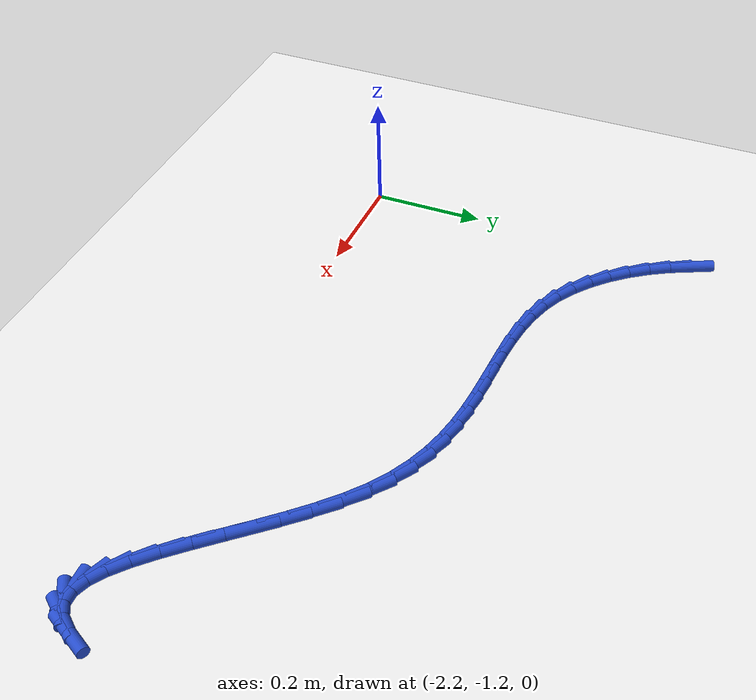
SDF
<sdf version="1.6">
 <world name="default">
  <model name="ground_plane">
   <static>1</static>
   <link name="link">
    <collision name="collision">
     <geometry><plane><normal>0 0 1</normal><size>100 100</size></plane></geometry>
     <surface><friction><ode><mu>100</mu><mu2>50</mu2></ode></friction></surface>
    </collision>
    <visual name="visual">
     <cast_shadows>0</cast_shadows>
     <geometry><plane><normal>0 0 1</normal><size>100 100</size></plane></geometry>
     <material>
      <script><uri>file://media/materials/scripts/gazebo.material</uri><name>Gazebo/WhiteGlow</name></script>
     </material>
    </visual>
   </link>
  </model>
  <model name="line">
   <link name="link_130">
    <pose>-2.198731474647877 -0.5958715231276223 0.01 0 1.57 -1.1341824459438654</pose>
    <collision name="collision">
     <geometry><cylinder><radius>0.01</radius><length>0.08</length></cylinder></geometry>
    </collision>
    <visual name="visual">
     <material>
      <script><name>Gazebo/Blue</name><uri>file://media/materials/scripts/gazebo.material</uri></script>
     </material>
     <geometry><cylinder><radius>0.01</radius><length>0.08</length></cylinder></geometry>
    </visual>
   </link>
   <link name="link_131">
    <pose>-2.1824698595963263 -0.6307190486161458 0.01 0 1.57 -1.0483207488748323</pose>
    <collision name="collision">
     <geometry><cylinder><radius>0.01</radius><length>0.08</length></cylinder></geometry>
    </collision>
    <visual name="visual">
     <material>
      <script><name>Gazebo/Blue</name><uri>file://media/materials/scripts/gazebo.material</uri></script>
     </material>
     <geometry><cylinder><radius>0.01</radius><length>0.08</length></cylinder></geometry>
    </visual>
   </link>
   <link name="link_132">
    <pose>-2.1632224410019 -0.6641431987549715 0.01 0 1.57 -0.9613625442135021</pose>
    <collision name="collision">
     <geometry><cylinder><radius>0.01</radius><length>0.08</length></cylinder></geometry>
    </collision>
    <visual name="visual">
     <material>
      <script><name>Gazebo/Blue</name><uri>file://media/materials/scripts/gazebo.material</uri></script>
     </material>
     <geometry><cylinder><radius>0.01</radius><length>0.08</length></cylinder></geometry>
    </visual>
   </link>
   <link name="link_133">
    <pose>-2.1412140549735867 -0.6956703874792862 0.01 0 1.57 -0.8710729217029075</pose>
    <collision name="collision">
     <geometry><cylinder><radius>0.01</radius><length>0.08</length></cylinder></geometry>
    </collision>
    <visual name="visual">
     <material>
      <script><name>Gazebo/Blue</name><uri>file://media/materials/scripts/gazebo.material</uri></script>
     </material>
     <geometry><cylinder><radius>0.01</radius><length>0.08</length></cylinder></geometry>
    </visual>
   </link>
   <link name="link_134">
    <pose>-2.116669537620373 -0.7248270287242748 0.01 0 1.57 -0.7751799365251962</pose>
    <collision name="collision">
     <geometry><cylinder><radius>0.01</radius><length>0.08</length></cylinder></geometry>
    </collision>
    <visual name="visual">
     <material>
      <script><name>Gazebo/Blue</name><uri>file://media/materials/scripts/gazebo.material</uri></script>
     </material>
     <geometry><cylinder><radius>0.01</radius><length>0.08</length></cylinder></geometry>
    </visual>
   </link>
   <link name="link_135">
    <pose>-2.0898137250512465 -0.7511395364251229 0.01 0 1.57 -0.6713815204581652</pose>
    <collision name="collision">
     <geometry><cylinder><radius>0.01</radius><length>0.08</length></cylinder></geometry>
    </collision>
    <visual name="visual">
     <material>
      <script><name>Gazebo/Blue</name><uri>file://media/materials/scripts/gazebo.material</uri></script>
     </material>
     <geometry><cylinder><radius>0.01</radius><length>0.08</length></cylinder></geometry>
    </visual>
   </link>
   <link name="link_136">
    <pose>-2.0608714533751975 -0.7741343245170154 0.01 0 1.57 -0.5574557455081393</pose>
    <collision name="collision">
     <geometry><cylinder><radius>0.01</radius><length>0.08</length></cylinder></geometry>
    </collision>
    <visual name="visual">
     <material>
      <script><name>Gazebo/Blue</name><uri>file://media/materials/scripts/gazebo.material</uri></script>
     </material>
     <geometry><cylinder><radius>0.01</radius><length>0.08</length></cylinder></geometry>
    </visual>
   </link>
   <link name="link_137">
    <pose>-2.030067558701211 -0.7933378069351376 0.01 0 1.57 -0.43206512940823466</pose>
    <collision name="collision">
     <geometry><cylinder><radius>0.01</radius><length>0.08</length></cylinder></geometry>
    </collision>
    <visual name="visual">
     <material>
      <script><name>Gazebo/Blue</name><uri>file://media/materials/scripts/gazebo.material</uri></script>
     </material>
     <geometry><cylinder><radius>0.01</radius><length>0.08</length></cylinder></geometry>
    </visual>
   </link>
   <link name="link_138">
    <pose>-1.9976281390189556 -0.8082963659332197 0.01 0 1.57 -0.3098471521096765</pose>
    <collision name="collision">
     <geometry><cylinder><radius>0.01</radius><length>0.08</length></cylinder></geometry>
    </collision>
    <visual name="visual">
     <material>
      <script><name>Gazebo/Blue</name><uri>file://media/materials/scripts/gazebo.material</uri></script>
     </material>
     <geometry><cylinder><radius>0.01</radius><length>0.08</length></cylinder></geometry>
    </visual>
   </link>
   <link name="link_139">
    <pose>-1.9638150318965155 -0.81912193587967 0.01 0 1.57 -0.21002216598823686</pose>
    <collision name="collision">
     <geometry><cylinder><radius>0.01</radius><length>0.08</length></cylinder></geometry>
    </collision>
    <visual name="visual">
     <material>
      <script><name>Gazebo/Blue</name><uri>file://media/materials/scripts/gazebo.material</uri></script>
     </material>
     <geometry><cylinder><radius>0.01</radius><length>0.08</length></cylinder></geometry>
    </visual>
   </link>
   <link name="link_140">
    <pose>-1.928929999330796 -0.8265582253871631 0.01 0 1.57 -0.13448658965517532</pose>
    <collision name="collision">
     <geometry><cylinder><radius>0.01</radius><length>0.08</length></cylinder></geometry>
    </collision>
    <visual name="visual">
     <material>
      <script><name>Gazebo/Blue</name><uri>file://media/materials/scripts/gazebo.material</uri></script>
     </material>
     <geometry><cylinder><radius>0.01</radius><length>0.08</length></cylinder></geometry>
    </visual>
   </link>
   <link name="link_141">
    <pose>-1.8932769053877432 -0.8313822067397708 0.01 0 1.57 -0.08256023352288526</pose>
    <collision name="collision">
     <geometry><cylinder><radius>0.01</radius><length>0.08</length></cylinder></geometry>
    </collision>
    <visual name="visual">
     <material>
      <script><name>Gazebo/Blue</name><uri>file://media/materials/scripts/gazebo.material</uri></script>
     </material>
     <geometry><cylinder><radius>0.01</radius><length>0.08</length></cylinder></geometry>
    </visual>
   </link>
   <link name="link_142">
    <pose>-1.857159614133303 -0.8343708522215646 0.01 0 1.57 -0.053158479001413884</pose>
    <collision name="collision">
     <geometry><cylinder><radius>0.01</radius><length>0.08</length></cylinder></geometry>
    </collision>
    <visual name="visual">
     <material>
      <script><name>Gazebo/Blue</name><uri>file://media/materials/scripts/gazebo.material</uri></script>
     </material>
     <geometry><cylinder><radius>0.01</radius><length>0.08</length></cylinder></geometry>
    </visual>
   </link>
   <link name="link_143">
    <pose>-1.8208819896334214 -0.8363011341166158 0.01 0 1.57 -0.04560090876845848</pose>
    <collision name="collision">
     <geometry><cylinder><radius>0.01</radius><length>0.08</length></cylinder></geometry>
    </collision>
    <visual name="visual">
     <material>
      <script><name>Gazebo/Blue</name><uri>file://media/materials/scripts/gazebo.material</uri></script>
     </material>
     <geometry><cylinder><radius>0.01</radius><length>0.08</length></cylinder></geometry>
    </visual>
   </link>
   <link name="link_144">
    <pose>-1.7847478959540466 -0.8379500247089954 0.01 0 1.57 -0.05970701881820016</pose>
    <collision name="collision">
     <geometry><cylinder><radius>0.01</radius><length>0.08</length></cylinder></geometry>
    </collision>
    <visual name="visual">
     <material>
      <script><name>Gazebo/Blue</name><uri>file://media/materials/scripts/gazebo.material</uri></script>
     </material>
     <geometry><cylinder><radius>0.01</radius><length>0.08</length></cylinder></geometry>
    </visual>
   </link>
   <link name="link_145">
    <pose>-1.7490443413570749 -0.8400843143144819 0.01 0 1.57 -0.09259395101061291</pose>
    <collision name="collision">
     <geometry><cylinder><radius>0.01</radius><length>0.08</length></cylinder></geometry>
    </collision>
    <visual name="visual">
     <material>
      <script><name>Gazebo/Blue</name><uri>file://media/materials/scripts/gazebo.material</uri></script>
     </material>
     <geometry><cylinder><radius>0.01</radius><length>0.08</length></cylinder></geometry>
    </visual>
   </link>
   <link name="link_146">
    <pose>-1.7138607564029986 -0.8433514438612322 0.01 0 1.57 -0.14224864553624136</pose>
    <collision name="collision">
     <geometry><cylinder><radius>0.01</radius><length>0.08</length></cylinder></geometry>
    </collision>
    <visual name="visual">
     <material>
      <script><name>Gazebo/Blue</name><uri>file://media/materials/scripts/gazebo.material</uri></script>
     </material>
     <geometry><cylinder><radius>0.01</radius><length>0.08</length></cylinder></geometry>
    </visual>
   </link>
   <link name="link_147">
    <pose>-1.6791583243772952 -0.8483213848381499 0.01 0 1.57 -0.20828708573421248</pose>
    <collision name="collision">
     <geometry><cylinder><radius>0.01</radius><length>0.08</length></cylinder></geometry>
    </collision>
    <visual name="visual">
     <material>
      <script><name>Gazebo/Blue</name><uri>file://media/materials/scripts/gazebo.material</uri></script>
     </material>
     <geometry><cylinder><radius>0.01</radius><length>0.08</length></cylinder></geometry>
    </visual>
   </link>
   <link name="link_148">
    <pose>-1.6448960558934145 -0.85556279630326 0.01 0 1.57 -0.2893588736398982</pose>
    <collision name="collision">
     <geometry><cylinder><radius>0.01</radius><length>0.08</length></cylinder></geometry>
    </collision>
    <visual name="visual">
     <material>
      <script><name>Gazebo/Blue</name><uri>file://media/materials/scripts/gazebo.material</uri></script>
     </material>
     <geometry><cylinder><radius>0.01</radius><length>0.08</length></cylinder></geometry>
    </visual>
   </link>
   <link name="link_149">
    <pose>-1.6110329615648071 -0.865644337314588 0.01 0 1.57 -0.3827779265731072</pose>
    <collision name="collision">
     <geometry><cylinder><radius>0.01</radius><length>0.08</length></cylinder></geometry>
    </collision>
    <visual name="visual">
     <material>
      <script><name>Gazebo/Blue</name><uri>file://media/materials/scripts/gazebo.material</uri></script>
     </material>
     <geometry><cylinder><radius>0.01</radius><length>0.08</length></cylinder></geometry>
    </visual>
   </link>
   <link name="link_150">
    <pose>-1.5775280520049213 -0.8791346669301581 0.01 0 1.57 -0.48449112565479047</pose>
    <collision name="collision">
     <geometry><cylinder><radius>0.01</radius><length>0.08</length></cylinder></geometry>
    </collision>
    <visual name="visual">
     <material>
      <script><name>Gazebo/Blue</name><uri>file://media/materials/scripts/gazebo.material</uri></script>
     </material>
     <geometry><cylinder><radius>0.01</radius><length>0.08</length></cylinder></geometry>
    </visual>
   </link>
   <link name="link_151">
    <pose>-1.5443403378272078 -0.8966024442079964 0.01 0 1.57 -0.5895340685820873</pose>
    <collision name="collision">
     <geometry><cylinder><radius>0.01</radius><length>0.08</length></cylinder></geometry>
    </collision>
    <visual name="visual">
     <material>
      <script><name>Gazebo/Blue</name><uri>file://media/materials/scripts/gazebo.material</uri></script>
     </material>
     <geometry><cylinder><radius>0.01</radius><length>0.08</length></cylinder></geometry>
    </visual>
   </link>
   <link name="link_152">
    <pose>-1.511428829645113 -0.9186163282061279 0.01 0 1.57 -0.6901585364938444</pose>
    <collision name="collision">
     <geometry><cylinder><radius>0.01</radius><length>0.08</length></cylinder></geometry>
    </collision>
    <visual name="visual">
     <material>
      <script><name>Gazebo/Blue</name><uri>file://media/materials/scripts/gazebo.material</uri></script>
     </material>
     <geometry><cylinder><radius>0.01</radius><length>0.08</length></cylinder></geometry>
    </visual>
   </link>
   <link name="link_153">
    <pose>-1.4787681848894698 -0.9455810436707625 0.01 0 1.57 -0.7664221974112636</pose>
    <collision name="collision">
     <geometry><cylinder><radius>0.01</radius><length>0.08</length></cylinder></geometry>
    </collision>
    <visual name="visual">
     <material>
      <script><name>Gazebo/Blue</name><uri>file://media/materials/scripts/gazebo.material</uri></script>
     </material>
     <geometry><cylinder><radius>0.01</radius><length>0.08</length></cylinder></geometry>
    </visual>
   </link>
   <link name="link_154">
    <pose>-1.4464479752175985 -0.9766973398570713 0.01 0 1.57 -0.8172096946961277</pose>
    <collision name="collision">
     <geometry><cylinder><radius>0.01</radius><length>0.08</length></cylinder></geometry>
    </collision>
    <visual name="visual">
     <material>
      <script><name>Gazebo/Blue</name><uri>file://media/materials/scripts/gazebo.material</uri></script>
     </material>
     <geometry><cylinder><radius>0.01</radius><length>0.08</length></cylinder></geometry>
    </visual>
   </link>
   <link name="link_155">
    <pose>-1.4146089946433793 -1.0106293008590126 0.01 0 1.57 -0.8482415148907783</pose>
    <collision name="collision">
     <geometry><cylinder><radius>0.01</radius><length>0.08</length></cylinder></geometry>
    </collision>
    <visual name="visual">
     <material>
      <script><name>Gazebo/Blue</name><uri>file://media/materials/scripts/gazebo.material</uri></script>
     </material>
     <geometry><cylinder><radius>0.01</radius><length>0.08</length></cylinder></geometry>
    </visual>
   </link>
   <link name="link_156">
    <pose>-1.3833922728020693 -1.0460385421261 0.01 0 1.57 -0.86243603906075</pose>
    <collision name="collision">
     <geometry><cylinder><radius>0.01</radius><length>0.08</length></cylinder></geometry>
    </collision>
    <visual name="visual">
     <material>
      <script><name>Gazebo/Blue</name><uri>file://media/materials/scripts/gazebo.material</uri></script>
     </material>
     <geometry><cylinder><radius>0.01</radius><length>0.08</length></cylinder></geometry>
    </visual>
   </link>
   <link name="link_157">
    <pose>-1.3529388393289294 -1.0815866791078461 0.01 0 1.57 -0.8603700661896171</pose>
    <collision name="collision">
     <geometry><cylinder><radius>0.01</radius><length>0.08</length></cylinder></geometry>
    </collision>
    <visual name="visual">
     <material>
      <script><name>Gazebo/Blue</name><uri>file://media/materials/scripts/gazebo.material</uri></script>
     </material>
     <geometry><cylinder><radius>0.01</radius><length>0.08</length></cylinder></geometry>
    </visual>
   </link>
   <link name="link_158">
    <pose>-1.3233897238592183 -1.1159353272537649 0.01 0 1.57 -0.8401726646518956</pose>
    <collision name="collision">
     <geometry><cylinder><radius>0.01</radius><length>0.08</length></cylinder></geometry>
    </collision>
    <visual name="visual">
     <material>
      <script><name>Gazebo/Blue</name><uri>file://media/materials/scripts/gazebo.material</uri></script>
     </material>
     <geometry><cylinder><radius>0.01</radius><length>0.08</length></cylinder></geometry>
    </visual>
   </link>
   <link name="link_159">
    <pose>-1.2948859560281938 -1.1477461020133697 0.01 0 1.57 -0.7965670195325412</pose>
    <collision name="collision">
     <geometry><cylinder><radius>0.01</radius><length>0.08</length></cylinder></geometry>
    </collision>
    <visual name="visual">
     <material>
      <script><name>Gazebo/Blue</name><uri>file://media/materials/scripts/gazebo.material</uri></script>
     </material>
     <geometry><cylinder><radius>0.01</radius><length>0.08</length></cylinder></geometry>
    </visual>
   </link>
   <link name="link_160">
    <pose>-1.2675685654711155 -1.1756806188361755 0.01 0 1.57 -0.7183643049705046</pose>
    <collision name="collision">
     <geometry><cylinder><radius>0.01</radius><length>0.08</length></cylinder></geometry>
    </collision>
    <visual name="visual">
     <material>
      <script><name>Gazebo/Blue</name><uri>file://media/materials/scripts/gazebo.material</uri></script>
     </material>
     <geometry><cylinder><radius>0.01</radius><length>0.08</length></cylinder></geometry>
    </visual>
   </link>
   <link name="link_161">
    <pose>-1.241578581823243 -1.198400493171694 0.01 0 1.57 -0.582879316557772</pose>
    <collision name="collision">
     <geometry><cylinder><radius>0.01</radius><length>0.08</length></cylinder></geometry>
    </collision>
    <visual name="visual">
     <material>
      <script><name>Gazebo/Blue</name><uri>file://media/materials/scripts/gazebo.material</uri></script>
     </material>
     <geometry><cylinder><radius>0.01</radius><length>0.08</length></cylinder></geometry>
    </visual>
   </link>
   <link name="link_162">
    <pose>-1.2170570347198348 -1.21456734046944 0.01 0 1.57 -0.3466017479109528</pose>
    <collision name="collision">
     <geometry><cylinder><radius>0.01</radius><length>0.08</length></cylinder></geometry>
    </collision>
    <visual name="visual">
     <material>
      <script><name>Gazebo/Blue</name><uri>file://media/materials/scripts/gazebo.material</uri></script>
     </material>
     <geometry><cylinder><radius>0.01</radius><length>0.08</length></cylinder></geometry>
    </visual>
   </link>
   <link name="link_163">
    <pose>-1.1941449537961497 -1.2228427761789264 0.01 0 1.57 0.04506818321684492</pose>
    <collision name="collision">
     <geometry><cylinder><radius>0.01</radius><length>0.08</length></cylinder></geometry>
    </collision>
    <visual name="visual">
     <material>
      <script><name>Gazebo/Blue</name><uri>file://media/materials/scripts/gazebo.material</uri></script>
     </material>
     <geometry><cylinder><radius>0.01</radius><length>0.08</length></cylinder></geometry>
    </visual>
   </link>
   <link name="link_164">
    <pose>-1.1729833686874467 -1.2218884157496677 0.01 0 1.57 0.5388482239848233</pose>
    <collision name="collision">
     <geometry><cylinder><radius>0.01</radius><length>0.08</length></cylinder></geometry>
    </collision>
    <visual name="visual">
     <material>
      <script><name>Gazebo/Blue</name><uri>file://media/materials/scripts/gazebo.material</uri></script>
     </material>
     <geometry><cylinder><radius>0.01</radius><length>0.08</length></cylinder></geometry>
    </visual>
   </link>
   <link name="link_165">
    <pose>-1.153712980626977 -1.2103673237422148 0.01 0 1.57 0.9071632412828006</pose>
    <collision name="collision">
     <geometry><cylinder><radius>0.01</radius><length>0.08</length></cylinder></geometry>
    </collision>
    <visual name="visual">
     <material>
      <script><name>Gazebo/Blue</name><uri>file://media/materials/scripts/gazebo.material</uri></script>
     </material>
     <geometry><cylinder><radius>0.01</radius><length>0.08</length></cylinder></geometry>
    </visual>
   </link>
   <link name="link_166">
    <pose>-1.1362321912946094 -1.1880117389292804 0.01 0 1.57 1.0757796951402814</pose>
    <collision name="collision">
     <geometry><cylinder><radius>0.01</radius><length>0.08</length></cylinder></geometry>
    </collision>
    <visual name="visual">
     <material>
      <script><name>Gazebo/Blue</name><uri>file://media/materials/scripts/gazebo.material</uri></script>
     </material>
     <geometry><cylinder><radius>0.01</radius><length>0.08</length></cylinder></geometry>
    </visual>
   </link>
  </model>
 </world>
</sdf>
